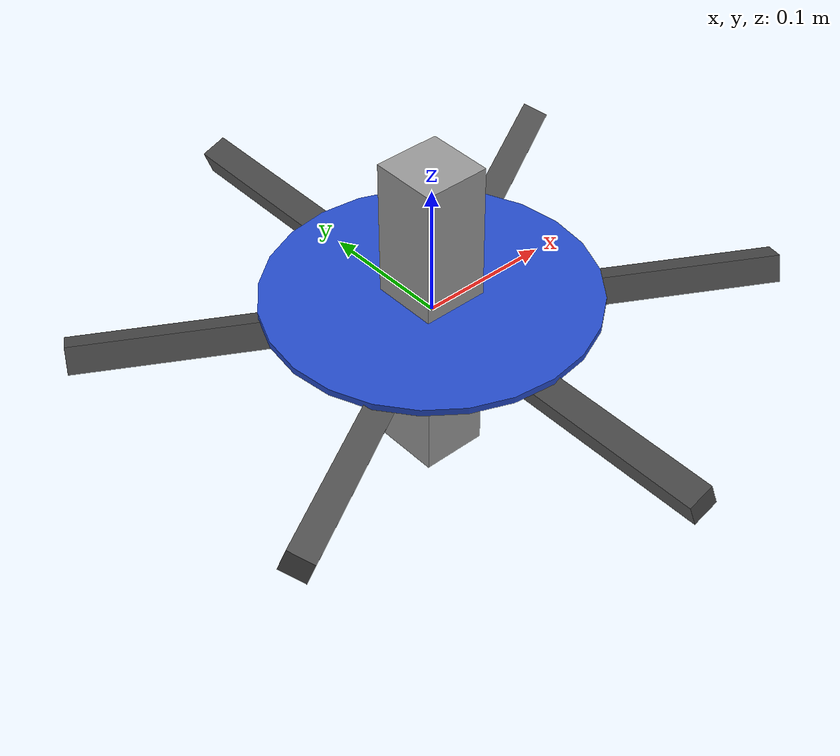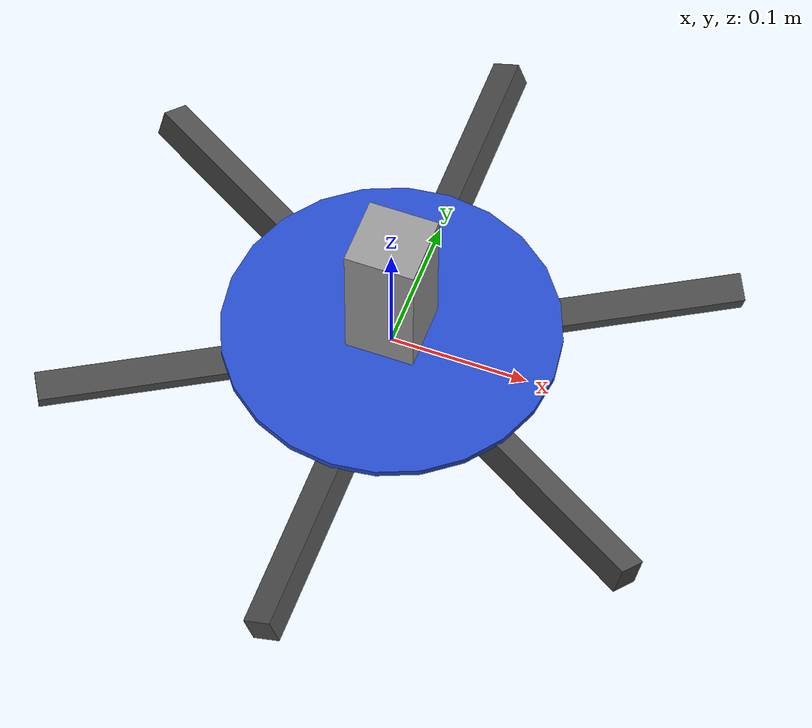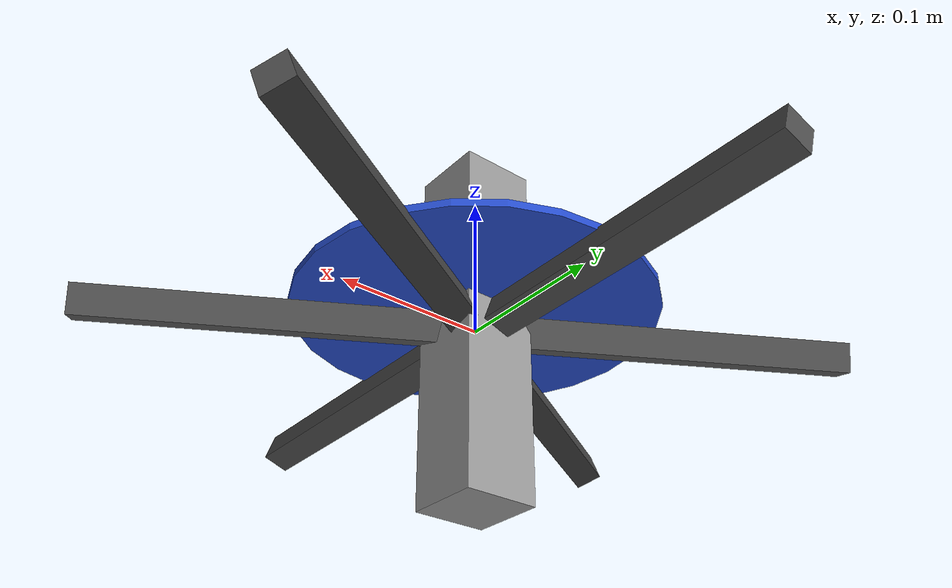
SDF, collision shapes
<?xml version="1.0" ?>

  <sdf version="1.5">
    <model name="nonplant_hex">

      <include>
        <uri>model://nonplant_hex_base</uri>
        <name>nonplant_hex_base</name>
        <pose>0 0 0.0 0 0 0.0</pose>
      </include>

      <include>
        <uri>model://nonplant_hex_arm</uri>
        <name>nonplant_hex_arm_1</name>
        <pose>0.21650635094610968 -0.12499999999999999 0 0 0.3490658503988659 1.0471975511965979</pose>
      </include>
      <joint name="nonplant_hex_arm_1_joint" type="fixed">
        <parent>nonplant_hex_base::base</parent>
        <child>nonplant_hex_arm_1::arm</child>
      </joint>

      <include>
        <uri>model://nonplant_hex_arm</uri>
        <name>nonplant_hex_arm_2</name>
        <pose>1.5308084989341915e-17 -0.25 0 0 -0.3490658503988659 0.0</pose>
      </include>
      <joint name="nonplant_hex_arm_2_joint" type="fixed">
        <parent>nonplant_hex_base::base</parent>
        <child>nonplant_hex_arm_2::arm</child>
      </joint>

      <include>
        <uri>model://nonplant_hex_arm</uri>
        <name>nonplant_hex_arm_3</name>
        <pose>-0.21650635094610968 -0.12499999999999999 0 0 0.3490658503988659 -1.0471975511965979</pose>
      </include>
      <joint name="nonplant_hex_arm_3_joint" type="fixed">
        <parent>nonplant_hex_base::base</parent>
        <child>nonplant_hex_arm_3::arm</child>
      </joint>

      <include>
        <uri>model://nonplant_hex_arm</uri>
        <name>nonplant_hex_arm_4</name>
        <pose>-0.21650635094610965 0.12500000000000003 0 0 -0.3490658503988659 -2.0943951023931957</pose>
      </include>
      <joint name="nonplant_hex_arm_4_joint" type="fixed">
        <parent>nonplant_hex_base::base</parent>
        <child>nonplant_hex_arm_4::arm</child>
      </joint>

      <include>
        <uri>model://nonplant_hex_arm</uri>
        <name>nonplant_hex_arm_5</name>
        <pose>-4.592425496802574e-17 0.25 0 0 0.3490658503988659 -3.141592653589793</pose>
      </include>
      <joint name="nonplant_hex_arm_5_joint" type="fixed">
        <parent>nonplant_hex_base::base</parent>
        <child>nonplant_hex_arm_5::arm</child>
      </joint>

      <include>
        <uri>model://nonplant_hex_arm</uri>
        <name>nonplant_hex_arm_6</name>
        <pose>0.2165063509461096 0.1250000000000001 0 0 -0.3490658503988659 -4.1887902047863905</pose>
      </include>
      <joint name="nonplant_hex_arm_6_joint" type="fixed">
        <parent>nonplant_hex_base::base</parent>
        <child>nonplant_hex_arm_6::arm</child>
      </joint>

      <include>
        <uri>model://nonplant_hex_prop</uri>
        <name>nonplant_hex_prop_1</name>
        <pose relative_to="nonplant_hex_arm_1::arm">0 0 0.0135 0 0 0</pose>
      </include>
      <joint name="nonplant_hex_prop_1_joint" type="revolute">
        <parent>nonplant_hex_arm_1::arm</parent>
        <child>nonplant_hex_prop_1::prop</child>
        <axis>
          <xyz>0 0 1</xyz>
          <limit>
            <lower>-1e+16</lower>
            <upper>1e+16</upper>
          </limit>
          <dynamics>
            <damping>0.00001</damping>
          </dynamics>
          <use_parent_model_frame>0</use_parent_model_frame>
        </axis>
      </joint>
      <plugin name="nonplant_hex_prop_1_plugin" filename='librotors_gazebo_motor_model.so'>
        <robotNamespace></robotNamespace>
        <jointName>nonplant_hex_prop_1_joint</jointName>
        <linkName>nonplant_hex_prop_1::prop</linkName>
        <turningDirection>cw</turningDirection>
        <timeConstantUp>0.0125</timeConstantUp>
        <timeConstantDown>0.025</timeConstantDown>
        <maxRotVelocity>1000</maxRotVelocity>
        <motorConstant>2.599e-05</motorConstant>
        <momentConstant>0.06</momentConstant>
        <commandSubTopic>/gazebo/command/prop_speed</commandSubTopic>
        <motorNumber>0</motorNumber>
        <rotorDragCoefficient>0.000806428</rotorDragCoefficient>
        <rollingMomentCoefficient>1e-06</rollingMomentCoefficient>
        <motorSpeedPubTopic>prop_speed/0</motorSpeedPubTopic>
        <rotorVelocitySlowdownSim>10</rotorVelocitySlowdownSim>
      </plugin>

      <include>
        <uri>model://nonplant_hex_prop</uri>
        <name>nonplant_hex_prop_2</name>
        <pose relative_to="nonplant_hex_arm_2::arm">0 0 0.0135 0 0 0</pose>
      </include>
      <joint name="nonplant_hex_prop_2_joint" type="revolute">
        <parent>nonplant_hex_arm_2::arm</parent>
        <child>nonplant_hex_prop_2::prop</child>
        <axis>
          <xyz>0 0 1</xyz>
          <limit>
            <lower>-1e+16</lower>
            <upper>1e+16</upper>
          </limit>
          <dynamics>
            <damping>0.00001</damping>
          </dynamics>
          <use_parent_model_frame>0</use_parent_model_frame>
        </axis>
      </joint>
      <plugin name="nonplant_hex_prop_2_plugin" filename='librotors_gazebo_motor_model.so'>
        <robotNamespace></robotNamespace>
        <jointName>nonplant_hex_prop_2_joint</jointName>
        <linkName>nonplant_hex_prop_2::prop</linkName>
        <turningDirection>ccw</turningDirection>
        <timeConstantUp>0.0125</timeConstantUp>
        <timeConstantDown>0.025</timeConstantDown>
        <maxRotVelocity>1000</maxRotVelocity>
        <motorConstant>2.599e-05</motorConstant>
        <momentConstant>0.06</momentConstant>
        <commandSubTopic>/gazebo/command/prop_speed</commandSubTopic>
        <motorNumber>1</motorNumber>
        <rotorDragCoefficient>0.000806428</rotorDragCoefficient>
        <rollingMomentCoefficient>1e-06</rollingMomentCoefficient>
        <motorSpeedPubTopic>prop_speed/1</motorSpeedPubTopic>
        <rotorVelocitySlowdownSim>10</rotorVelocitySlowdownSim>
      </plugin>

      <include>
        <uri>model://nonplant_hex_prop</uri>
        <name>nonplant_hex_prop_3</name>
        <pose relative_to="nonplant_hex_arm_3::arm">0 0 0.0135 0 0 0</pose>
      </include>
      <joint name="nonplant_hex_prop_3_joint" type="revolute">
        <parent>nonplant_hex_arm_3::arm</parent>
        <child>nonplant_hex_prop_3::prop</child>
        <axis>
          <xyz>0 0 1</xyz>
          <limit>
            <lower>-1e+16</lower>
            <upper>1e+16</upper>
          </limit>
          <dynamics>
            <damping>0.00001</damping>
          </dynamics>
          <use_parent_model_frame>0</use_parent_model_frame>
        </axis>
      </joint>
      <plugin name="nonplant_hex_prop_3_plugin" filename='librotors_gazebo_motor_model.so'>
        <robotNamespace></robotNamespace>
        <jointName>nonplant_hex_prop_3_joint</jointName>
        <linkName>nonplant_hex_prop_3::prop</linkName>
        <turningDirection>cw</turningDirection>
        <timeConstantUp>0.0125</timeConstantUp>
        <timeConstantDown>0.025</timeConstantDown>
        <maxRotVelocity>1000</maxRotVelocity>
        <motorConstant>2.599e-05</motorConstant>
        <momentConstant>0.06</momentConstant>
        <commandSubTopic>/gazebo/command/prop_speed</commandSubTopic>
        <motorNumber>2</motorNumber>
        <rotorDragCoefficient>0.000806428</rotorDragCoefficient>
        <rollingMomentCoefficient>1e-06</rollingMomentCoefficient>
        <motorSpeedPubTopic>prop_speed/2</motorSpeedPubTopic>
        <rotorVelocitySlowdownSim>10</rotorVelocitySlowdownSim>
      </plugin>

      <include>
        <uri>model://nonplant_hex_prop</uri>
        <name>nonplant_hex_prop_4</name>
        <pose relative_to="nonplant_hex_arm_4::arm">0 0 0.0135 0 0 0</pose>
      </include>
      <joint name="nonplant_hex_prop_4_joint" type="revolute">
        <parent>nonplant_hex_arm_4::arm</parent>
        <child>nonplant_hex_prop_4::prop</child>
        <axis>
          <xyz>0 0 1</xyz>
          <limit>
            <lower>-1e+16</lower>
            <upper>1e+16</upper>
          </limit>
          <dynamics>
            <damping>0.00001</damping>
          </dynamics>
          <use_parent_model_frame>0</use_parent_model_frame>
        </axis>
      </joint>
      <plugin name="nonplant_hex_prop_4_plugin" filename='librotors_gazebo_motor_model.so'>
        <robotNamespace></robotNamespace>
        <jointName>nonplant_hex_prop_4_joint</jointName>
        <linkName>nonplant_hex_prop_4::prop</linkName>
        <turningDirection>ccw</turningDirection>
        <timeConstantUp>0.0125</timeConstantUp>
        <timeConstantDown>0.025</timeConstantDown>
        <maxRotVelocity>1000</maxRotVelocity>
        <motorConstant>2.599e-05</motorConstant>
        <momentConstant>0.06</momentConstant>
        <commandSubTopic>/gazebo/command/prop_speed</commandSubTopic>
        <motorNumber>3</motorNumber>
        <rotorDragCoefficient>0.000806428</rotorDragCoefficient>
        <rollingMomentCoefficient>1e-06</rollingMomentCoefficient>
        <motorSpeedPubTopic>prop_speed/3</motorSpeedPubTopic>
        <rotorVelocitySlowdownSim>10</rotorVelocitySlowdownSim>
      </plugin>

      <include>
        <uri>model://nonplant_hex_prop</uri>
        <name>nonplant_hex_prop_5</name>
        <pose relative_to="nonplant_hex_arm_5::arm">0 0 0.0135 0 0 0</pose>
      </include>
      <joint name="nonplant_hex_prop_5_joint" type="revolute">
        <parent>nonplant_hex_arm_5::arm</parent>
        <child>nonplant_hex_prop_5::prop</child>
        <axis>
          <xyz>0 0 1</xyz>
          <limit>
            <lower>-1e+16</lower>
            <upper>1e+16</upper>
          </limit>
          <dynamics>
            <damping>0.00001</damping>
          </dynamics>
          <use_parent_model_frame>0</use_parent_model_frame>
        </axis>
      </joint>
      <plugin name="nonplant_hex_prop_5_plugin" filename='librotors_gazebo_motor_model.so'>
        <robotNamespace></robotNamespace>
        <jointName>nonplant_hex_prop_5_joint</jointName>
        <linkName>nonplant_hex_prop_5::prop</linkName>
        <turningDirection>cw</turningDirection>
        <timeConstantUp>0.0125</timeConstantUp>
        <timeConstantDown>0.025</timeConstantDown>
        <maxRotVelocity>1000</maxRotVelocity>
        <motorConstant>2.599e-05</motorConstant>
        <momentConstant>0.06</momentConstant>
        <commandSubTopic>/gazebo/command/prop_speed</commandSubTopic>
        <motorNumber>4</motorNumber>
        <rotorDragCoefficient>0.000806428</rotorDragCoefficient>
        <rollingMomentCoefficient>1e-06</rollingMomentCoefficient>
        <motorSpeedPubTopic>prop_speed/4</motorSpeedPubTopic>
        <rotorVelocitySlowdownSim>10</rotorVelocitySlowdownSim>
      </plugin>

      <include>
        <uri>model://nonplant_hex_prop</uri>
        <name>nonplant_hex_prop_6</name>
        <pose relative_to="nonplant_hex_arm_6::arm">0 0 0.0135 0 0 0</pose>
      </include>
      <joint name="nonplant_hex_prop_6_joint" type="revolute">
        <parent>nonplant_hex_arm_6::arm</parent>
        <child>nonplant_hex_prop_6::prop</child>
        <axis>
          <xyz>0 0 1</xyz>
          <limit>
            <lower>-1e+16</lower>
            <upper>1e+16</upper>
          </limit>
          <dynamics>
            <damping>0.00001</damping>
          </dynamics>
          <use_parent_model_frame>0</use_parent_model_frame>
        </axis>
      </joint>
      <plugin name="nonplant_hex_prop_6_plugin" filename='librotors_gazebo_motor_model.so'>
        <robotNamespace></robotNamespace>
        <jointName>nonplant_hex_prop_6_joint</jointName>
        <linkName>nonplant_hex_prop_6::prop</linkName>
        <turningDirection>ccw</turningDirection>
        <timeConstantUp>0.0125</timeConstantUp>
        <timeConstantDown>0.025</timeConstantDown>
        <maxRotVelocity>1000</maxRotVelocity>
        <motorConstant>2.599e-05</motorConstant>
        <momentConstant>0.06</momentConstant>
        <commandSubTopic>/gazebo/command/prop_speed</commandSubTopic>
        <motorNumber>5</motorNumber>
        <rotorDragCoefficient>0.000806428</rotorDragCoefficient>
        <rollingMomentCoefficient>1e-06</rollingMomentCoefficient>
        <motorSpeedPubTopic>prop_speed/5</motorSpeedPubTopic>
        <rotorVelocitySlowdownSim>10</rotorVelocitySlowdownSim>
      </plugin>

      <plugin name="ArduRotorNormPlugin" filename="libArduRotorNormPlugin.so">
        <fdm_addr>127.0.0.1</fdm_addr>
        <fdm_port_in>9002</fdm_port_in>
        <fdm_port_out>9003</fdm_port_out>
        <modelXYZToAirplaneXForwardZDown>0 0 0 3.141593 0 0</modelXYZToAirplaneXForwardZDown>
        <gazeboXYZToNED>0 0 0 3.141593 0 0</gazeboXYZToNED>
        <motor_num>6</motor_num>
        <servo_num>0</servo_num>
        <motor_pub>/gazebo/command/prop_speed</motor_pub>
        <imuName>nonplant_hex_base::imu_link::imu_sensor</imuName>
        <connectionTimeoutMaxCount>5</connectionTimeoutMaxCount>
      </plugin>

      <plugin name="imu_plugin" filename="librotors_gazebo_imu_plugin.so">
        <robotNamespace>nonplant_hex</robotNamespace>
        <linkName>nonplant_hex_base::imu_link</linkName>
        <imuTopic>imu</imuTopic>
        <gyroscopeNoiseDensity>0.000349</gyroscopeNoiseDensity>
        <gyroscopeBiasRandomWalk>0.000266</gyroscopeBiasRandomWalk>
        <gyroscopeBiasCorrelationTime>600</gyroscopeBiasCorrelationTime>
        <gyroscopeTurnOnBiasSigma>0.0004</gyroscopeTurnOnBiasSigma>
        <accelerometerNoiseDensity>0.00324</accelerometerNoiseDensity>
        <accelerometerRandomWalk>0.0056</accelerometerRandomWalk>
        <accelerometerBiasCorrelationTime>600</accelerometerBiasCorrelationTime>
        <accelerometerTurnOnBiasSigma>0.016</accelerometerTurnOnBiasSigma>
      </plugin>
    </model>
</sdf>

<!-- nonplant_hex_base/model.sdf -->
<sdf version="1.5">
    <model name="nonplant_hex_base">

      <link name="base">
        <pose>0 0 0.0  0 0 0</pose>
        <inertial>
          <pose>0 0 0 0 0 0</pose>
          <mass>4.2</mass>
          <inertia>
            <ixx>0.02</ixx>
            <iyy>0.02</iyy>
            <izz>0.04</izz>
            <ixy>0</ixy>
            <ixz>0</ixz>
            <iyz>0</iyz>
          </inertia>
        </inertial>
        <collision name="base_collision">
          <pose>0 0 0  0 0 0</pose>
          <geometry>
            <box>
              <size>0.05 0.05 0.24</size>
            </box>
          </geometry>
          <surface>
            <contact>
              <ode>
                <max_vel>100.0</max_vel>
                <min_depth>0.001</min_depth>
              </ode>
            </contact>
            <friction>
              <ode>
                <mu>100000.0</mu>
                <mu2>100000.0</mu2>
              </ode>
            </friction>
          </surface>
        </collision>
        <visual name="base_visual">
          <geometry>
            <mesh>
              <uri>model://nonplant_hex_base/meshes/body.STL</uri>
            </mesh>
          </geometry>
          <material>
            <script>
              <name>Gazebo/Grey</name>
            </script>
          </material>
        </visual>
      </link>

      <link name='imu_link'>
        <inertial>
          <pose>0 0 0 0 0 0</pose>
          <mass>0.15</mass>
          <inertia>
            <ixx>0.00001</ixx>
            <ixy>0</ixy>
            <ixz>0</ixz>
            <iyy>0.00002</iyy>
            <iyz>0</iyz>
            <izz>0.00002</izz>
          </inertia>
        </inertial>
        <sensor name="imu_sensor" type="imu">
          <pose>0 0 0 3.141593 0 0</pose>
          <always_on>1</always_on>
          <update_rate>1000.0</update_rate>
          <topic>__default_topic__</topic>
        </sensor>
      </link>

      <joint name='imu_joint' type='revolute'>
        <child>imu_link</child>
        <parent>base</parent>
        <axis>
          <xyz>0 0 1</xyz>
          <limit>
            <lower>-0.0001</lower>
            <upper>0.00001</upper>
            <effort>0</effort>
            <velocity>0</velocity>
          </limit>
          <dynamics>
            <damping>1.0</damping>
          </dynamics>
          <use_parent_model_frame>1</use_parent_model_frame>
        </axis>
        <physics>
          <ode>
            <implicit_spring_damper>1</implicit_spring_damper>
          </ode>
        </physics>
      </joint>

    </model>
</sdf>

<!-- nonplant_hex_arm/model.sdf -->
<sdf version="1.5">
    <model name="nonplant_hex_arm">
      <link name='arm'>
        <pose>0 0 0 0 0 0</pose>
        <inertial>
          <pose>0 0 0 0 0 0</pose>
          <mass>0.05</mass>
          <inertia>
            <ixx>0.00005</ixx>
            <ixy>0</ixy>
            <ixz>0</ixz>
            <iyy>0.0005</iyy>
            <iyz>0</iyz>
            <izz>0.0005</izz>
          </inertia>
        </inertial>
        <collision name='arm_collision'>
          <pose>0 0.125 0 0 0 0</pose>
          <geometry>
            <box>
              <size>0.02 0.25 0.02</size>
            </box>
          </geometry>
          <surface>
            <contact>
              <ode />
            </contact>
            <friction>
              <ode />
            </friction>
          </surface>
        </collision>
        <visual name='arm_visual'>
          <pose>0 0 0 0 0 0</pose>
          <geometry>
            <mesh>
              <scale>1 1 1</scale>
              <uri>model://nonplant_hex_arm/meshes/arm.STL</uri>
            </mesh>
          </geometry>
          <material>
            <script>
              <name>Gazebo/DarkGrey</name>
              <uri>__default__</uri>
            </script>
          </material>
        </visual>
        <gravity>1</gravity>
        <velocity_decay />
        <self_collide>0</self_collide>
      </link>
    </model>
</sdf>

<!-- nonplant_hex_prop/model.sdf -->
<sdf version="1.5">
    <model name="nonplant_hex_prop">
      <link name='prop'>
        <pose>0.0 -0.0 0.0 0 -0 0</pose>
        <inertial>
          <pose>0 0 0 0 -0 0</pose>
          <mass>0.025</mass>
          <inertia>
            <ixx>9.75e-06</ixx>
            <ixy>0</ixy>
            <ixz>0</ixz>
            <iyy>0.000166704</iyy>
            <iyz>0</iyz>
            <izz>0.000167604</izz>
          </inertia>
        </inertial>
        <collision name='rotor_collision'>
          <pose>0 0 0 0 -0 0</pose>
          <geometry>
            <cylinder>
              <length>0.005</length>
              <radius>0.12</radius>
            </cylinder>
          </geometry>
          <surface>
            <contact>
              <ode />
            </contact>
            <friction>
              <ode />
            </friction>
          </surface>
        </collision>
        <visual name='prop_visual'>
          <pose>0 0 0 0 -0 0</pose>
          <geometry>
            <mesh>
              <scale>1 1 1</scale>
              <uri>model://nonplant_hex_prop/meshes/prop.STL</uri>
            </mesh>
          </geometry>
          <material>
            <script>
              <name>Gazebo/Blue</name>
              <uri>__default__</uri>
            </script>
          </material>
        </visual>
        <gravity>1</gravity>
        <velocity_decay />
        <self_collide>0</self_collide>
      </link>
    </model>
</sdf>
